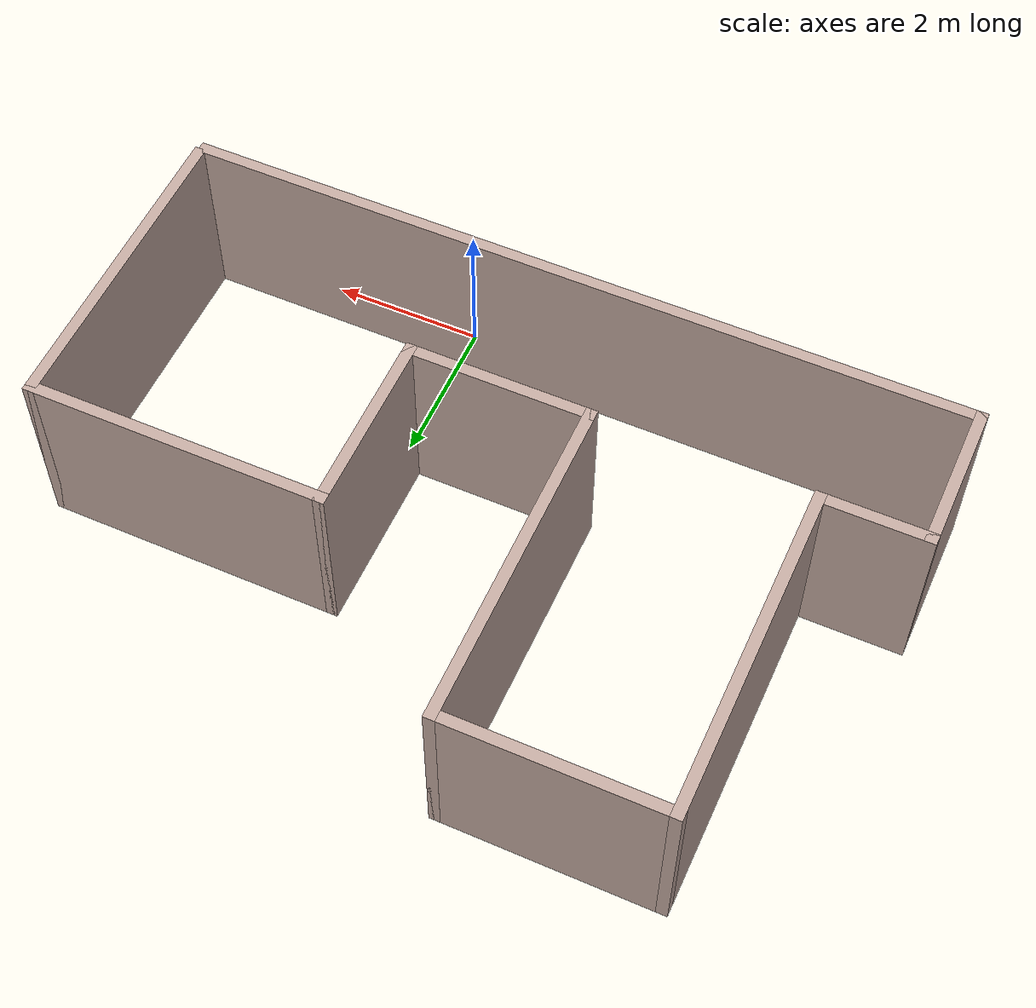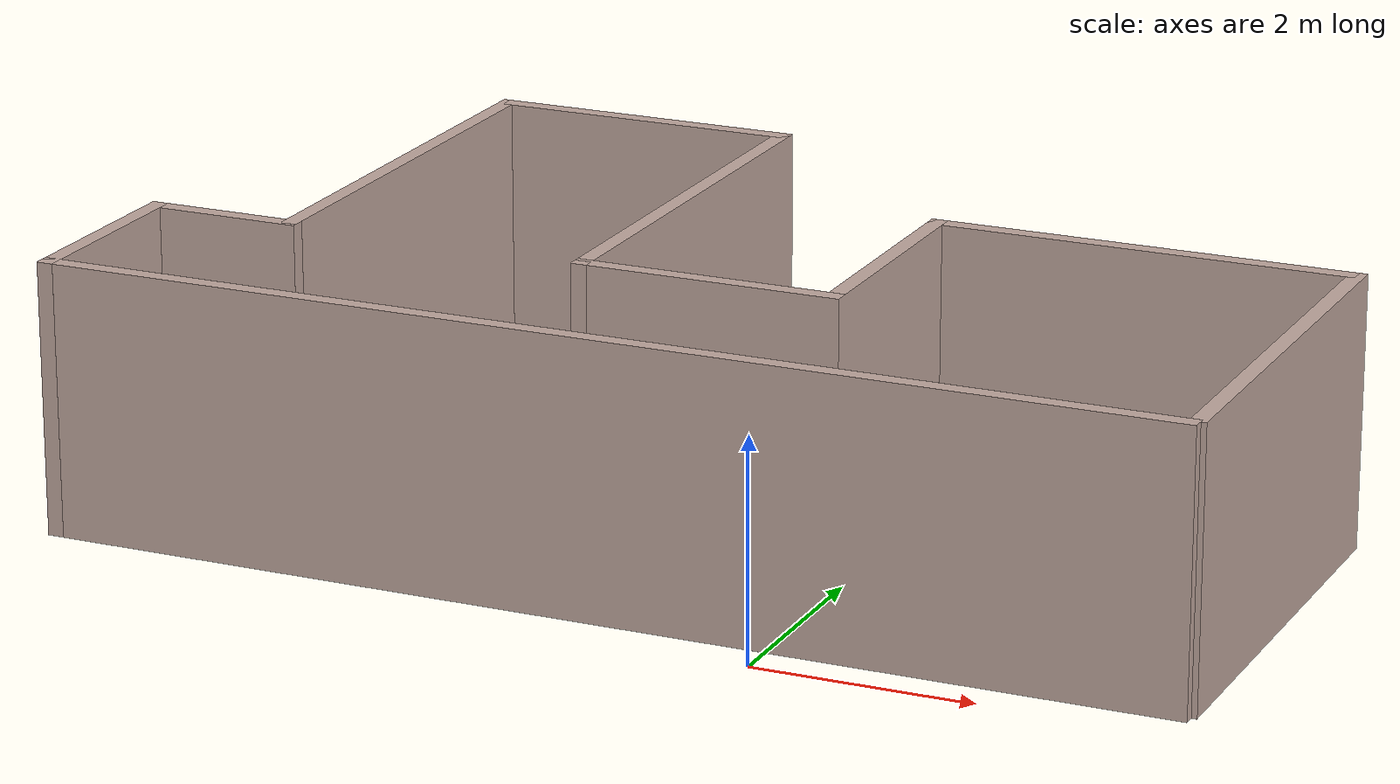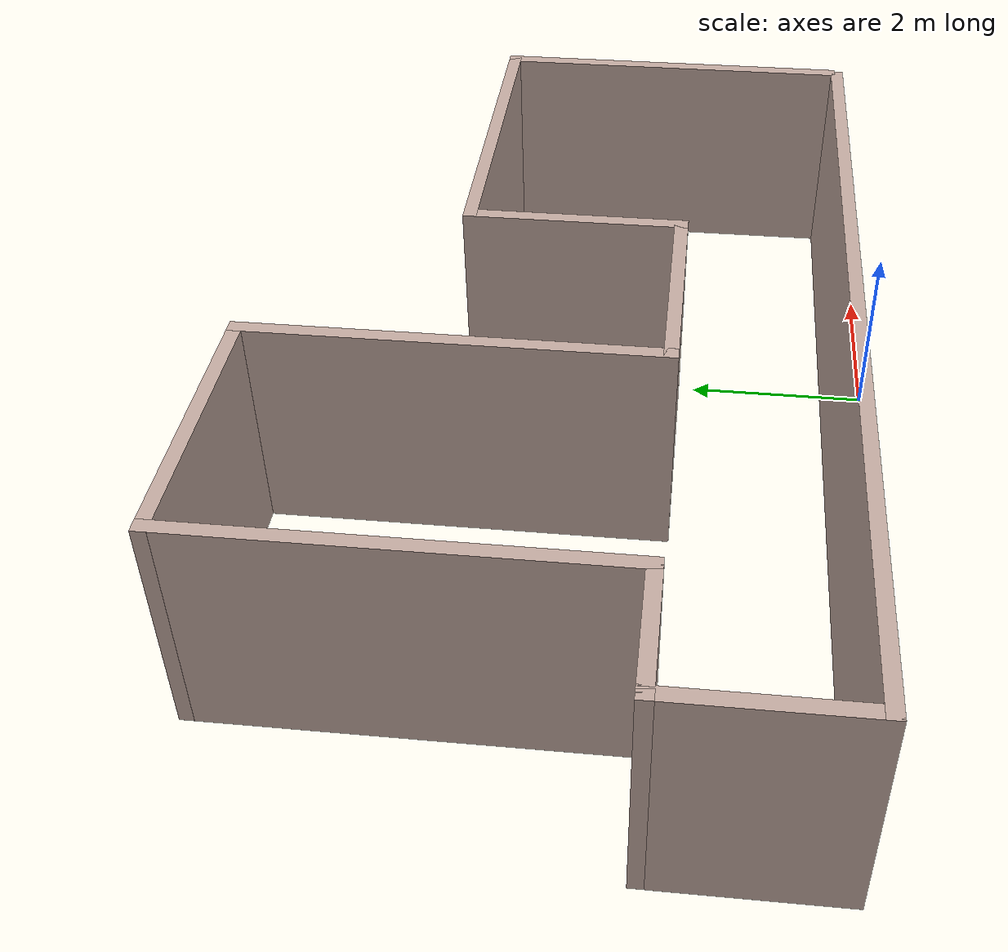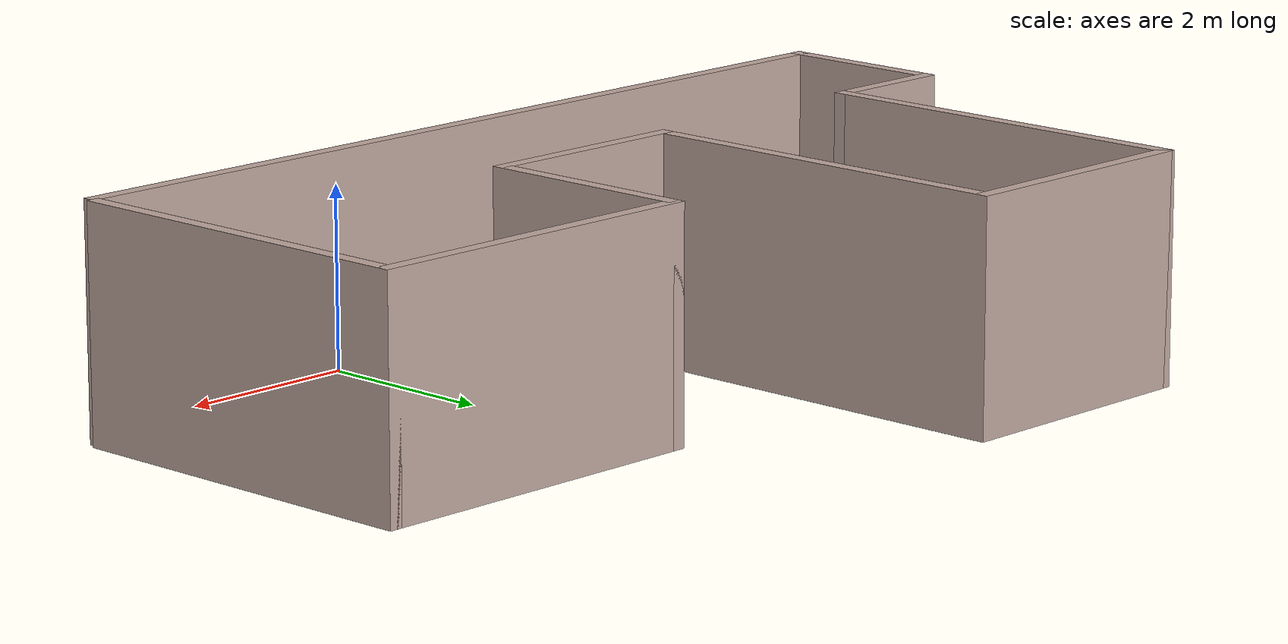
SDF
<?xml version='1.0'?>
<sdf version='1.6'>
  <model name='SimpleWorld'>
    <pose frame=''>-1.5558 3.50505 0 0 -0 0</pose>
    <link name='Wall_0'>
      <collision name='Wall_0_Collision'>
        <geometry>
          <box>
            <size>4.5 0.15 2.5</size>
          </box>
        </geometry>
        <pose frame=''>0 0 1.25 0 -0 0</pose>
      </collision>
      <visual name='Wall_0_Visual'>
        <pose frame=''>0 0 1.25 0 -0 0</pose>
        <geometry>
          <box>
            <size>4.5 0.15 2.5</size>
          </box>
        </geometry>
        <material>
          <script>
            <uri>file://media/materials/scripts/gazebo.material</uri>
            <name>Gazebo/Grey</name>
          </script>
          <ambient>0.760784 0.662745 0.627451 1</ambient>
        </material>
      </visual>
      <pose frame=''>-3.85 0.925 0 0 0 -1.5708</pose>
    </link>
    <link name='Wall_13'>
      <collision name='Wall_13_Collision'>
        <geometry>
          <box>
            <size>1.5 0.15 2.5</size>
          </box>
        </geometry>
        <pose frame=''>0 0 1.25 0 -0 0</pose>
      </collision>
      <visual name='Wall_13_Visual'>
        <pose frame=''>0 0 1.25 0 -0 0</pose>
        <geometry>
          <box>
            <size>1.5 0.15 2.5</size>
          </box>
        </geometry>
        <material>
          <script>
            <uri>file://media/materials/scripts/gazebo.material</uri>
            <name>Gazebo/Grey</name>
          </script>
          <ambient>0.760784 0.662745 0.627451 1</ambient>
        </material>
      </visual>
      <pose frame=''>-4.525 -1.25 0 0 -0 3.14159</pose>
    </link>
    <link name='Wall_14'>
      <collision name='Wall_14_Collision'>
        <geometry>
          <box>
            <size>2 0.15 2.5</size>
          </box>
        </geometry>
        <pose frame=''>0 0 1.25 0 -0 0</pose>
      </collision>
      <visual name='Wall_14_Visual'>
        <pose frame=''>0 0 1.25 0 -0 0</pose>
        <geometry>
          <box>
            <size>2 0.15 2.5</size>
          </box>
        </geometry>
        <material>
          <script>
            <uri>file://media/materials/scripts/gazebo.material</uri>
            <name>Gazebo/Grey</name>
          </script>
          <ambient>0.760784 0.662745 0.627451 1</ambient>
        </material>
      </visual>
      <pose frame=''>-5.2 -2.175 0 0 0 -1.5708</pose>
    </link>
    <link name='Wall_15'>
      <collision name='Wall_15_Collision'>
        <geometry>
          <box>
            <size>10.5 0.15 2.5</size>
          </box>
        </geometry>
        <pose frame=''>0 0 1.25 0 -0 0</pose>
      </collision>
      <visual name='Wall_15_Visual'>
        <pose frame=''>0 0 1.25 0 -0 0</pose>
        <geometry>
          <box>
            <size>10.5 0.15 2.5</size>
          </box>
        </geometry>
        <material>
          <script>
            <uri>file://media/materials/scripts/gazebo.material</uri>
            <name>Gazebo/Grey</name>
          </script>
          <ambient>0.760784 0.662745 0.627451 1</ambient>
        </material>
      </visual>
      <pose frame=''>-0.025 -3.1 0 0 -0 0</pose>
    </link>
    <link name='Wall_3'>
      <collision name='Wall_3_Collision'>
        <geometry>
          <box>
            <size>3 0.15 2.5</size>
          </box>
        </geometry>
        <pose frame=''>0 0 1.25 0 -0 0</pose>
      </collision>
      <visual name='Wall_3_Visual'>
        <pose frame=''>0 0 1.25 0 -0 0</pose>
        <geometry>
          <box>
            <size>3 0.15 2.5</size>
          </box>
        </geometry>
        <material>
          <script>
            <uri>file://media/materials/scripts/gazebo.material</uri>
            <name>Gazebo/Grey</name>
          </script>
          <ambient>0.760784 0.662745 0.627451 1</ambient>
        </material>
      </visual>
      <pose frame=''>-2.425 3.1 0 0 -0 0</pose>
    </link>
    <link name='Wall_4'>
      <collision name='Wall_4_Collision'>
        <geometry>
          <box>
            <size>4.5 0.15 2.5</size>
          </box>
        </geometry>
        <pose frame=''>0 0 1.25 0 -0 0</pose>
      </collision>
      <visual name='Wall_4_Visual'>
        <pose frame=''>0 0 1.25 0 -0 0</pose>
        <geometry>
          <box>
            <size>4.5 0.15 2.5</size>
          </box>
        </geometry>
        <material>
          <script>
            <uri>file://media/materials/scripts/gazebo.material</uri>
            <name>Gazebo/Grey</name>
          </script>
          <ambient>0.760784 0.662745 0.627451 1</ambient>
        </material>
      </visual>
      <pose frame=''>-1 0.925 0 0 0 -1.5708</pose>
    </link>
    <link name='Wall_5'>
      <collision name='Wall_5_Collision'>
        <geometry>
          <box>
            <size>2.5 0.15 2.5</size>
          </box>
        </geometry>
        <pose frame=''>0 0 1.25 0 -0 0</pose>
      </collision>
      <visual name='Wall_5_Visual'>
        <pose frame=''>0 0 1.25 0 -0 0</pose>
        <geometry>
          <box>
            <size>2.5 0.15 2.5</size>
          </box>
        </geometry>
        <material>
          <script>
            <uri>file://media/materials/scripts/gazebo.material</uri>
            <name>Gazebo/Grey</name>
          </script>
          <ambient>0.760784 0.662745 0.627451 1</ambient>
        </material>
      </visual>
      <pose frame=''>0.175 -1.25 0 0 -0 0</pose>
    </link>
    <link name='Wall_6'>
      <collision name='Wall_6_Collision'>
        <geometry>
          <box>
            <size>2.5 0.15 2.5</size>
          </box>
        </geometry>
        <pose frame=''>0 0 1.25 0 -0 0</pose>
      </collision>
      <visual name='Wall_6_Visual'>
        <pose frame=''>0 0 1.25 0 -0 0</pose>
        <geometry>
          <box>
            <size>2.5 0.15 2.5</size>
          </box>
        </geometry>
        <material>
          <script>
            <uri>file://media/materials/scripts/gazebo.material</uri>
            <name>Gazebo/Grey</name>
          </script>
          <ambient>0.760784 0.662745 0.627451 1</ambient>
        </material>
      </visual>
      <pose frame=''>1.35 -0.075 0 0 -0 1.5708</pose>
    </link>
    <link name='Wall_7'>
      <collision name='Wall_7_Collision'>
        <geometry>
          <box>
            <size>4 0.15 2.5</size>
          </box>
        </geometry>
        <pose frame=''>0 0 1.25 0 -0 0</pose>
      </collision>
      <visual name='Wall_7_Visual'>
        <pose frame=''>0 0 1.25 0 -0 0</pose>
        <geometry>
          <box>
            <size>4 0.15 2.5</size>
          </box>
        </geometry>
        <material>
          <script>
            <uri>file://media/materials/scripts/gazebo.material</uri>
            <name>Gazebo/Grey</name>
          </script>
          <ambient>0.760784 0.662745 0.627451 1</ambient>
        </material>
      </visual>
      <pose frame=''>3.275 1.1 0 0 -0 0</pose>
    </link>
    <link name='Wall_8'>
      <collision name='Wall_8_Collision'>
        <geometry>
          <box>
            <size>4.25 0.15 2.5</size>
          </box>
        </geometry>
        <pose frame=''>0 0 1.25 0 -0 0</pose>
      </collision>
      <visual name='Wall_8_Visual'>
        <pose frame=''>0 0 1.25 0 -0 0</pose>
        <geometry>
          <box>
            <size>4.25 0.15 2.5</size>
          </box>
        </geometry>
        <material>
          <script>
            <uri>file://media/materials/scripts/gazebo.material</uri>
            <name>Gazebo/Grey</name>
          </script>
          <ambient>0.760784 0.662745 0.627451 1</ambient>
        </material>
      </visual>
      <pose frame=''>5.2 -0.95 0 0 0 -1.5708</pose>
    </link>
    <static>1</static>
  </model>
</sdf>
